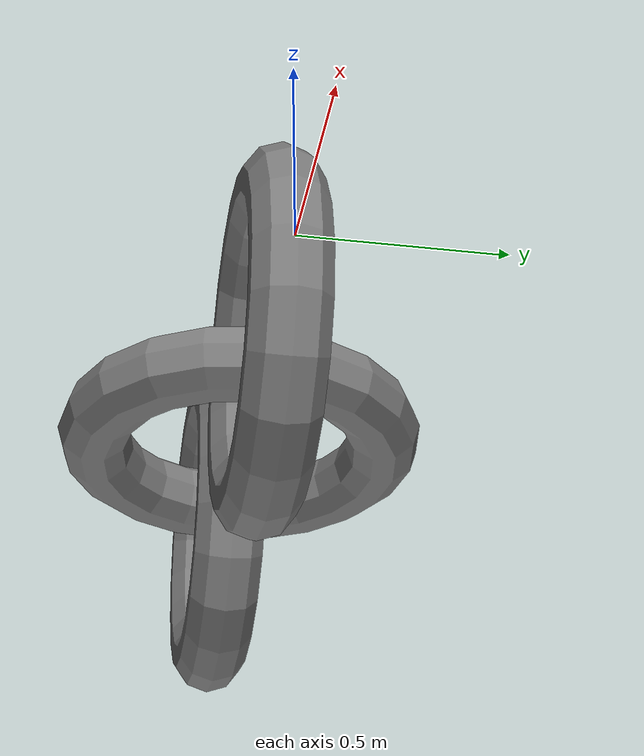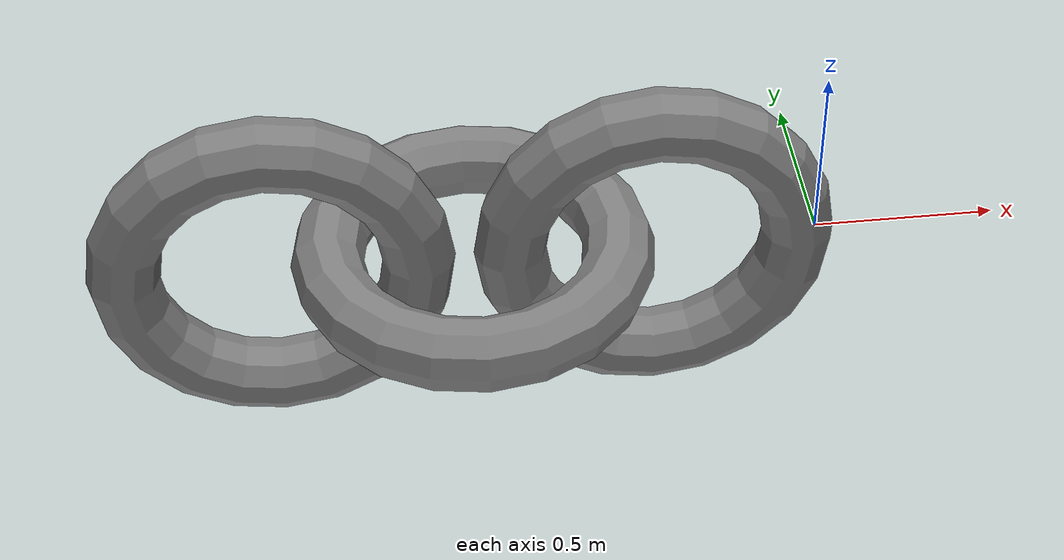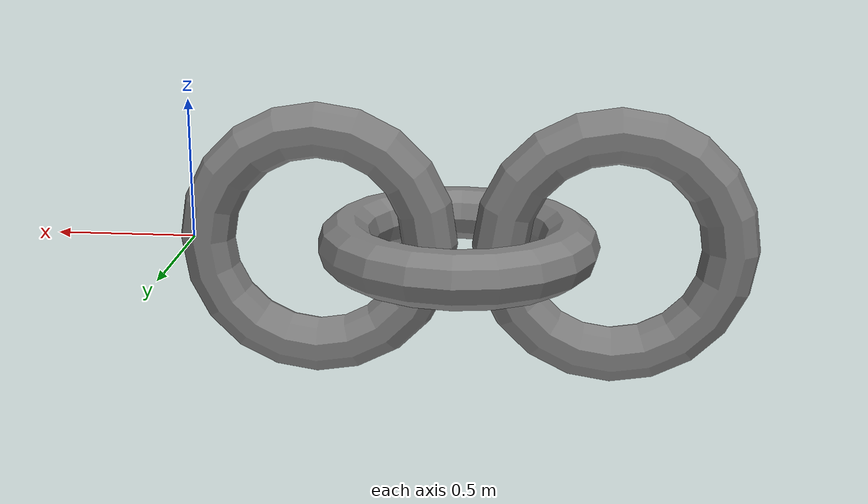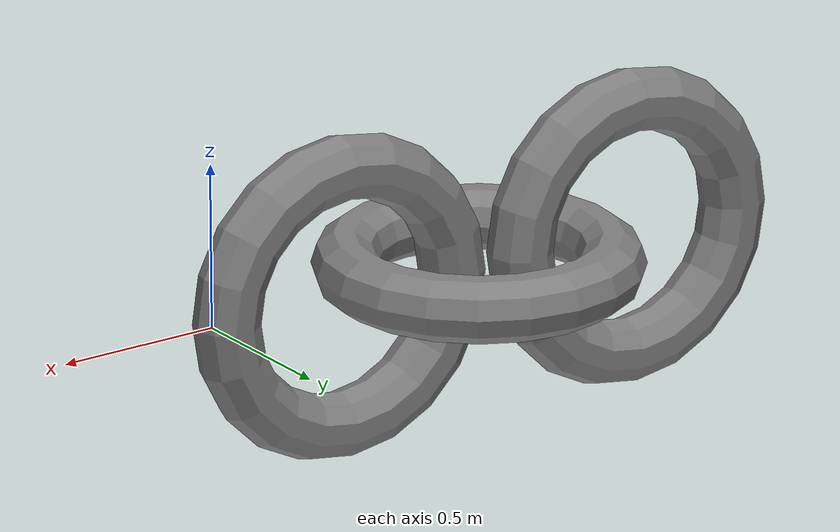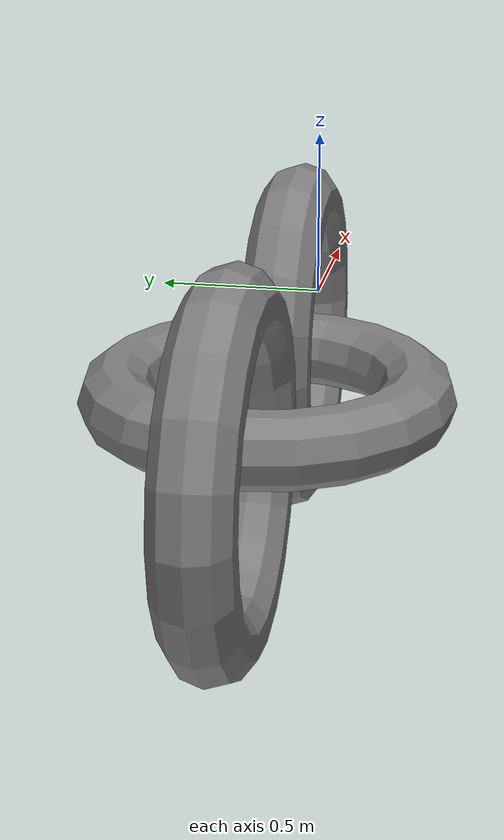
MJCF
<mujoco>
    <asset>
        <mesh file="torus.obj" name="torus"/>
        <mesh file="torus.obj" name="torus"/>
        <mesh file="torus.obj" name="torus"/>
    </asset>
    <worldbody>
        <body pos="-1.5 0 0" quat="0 0 0.707107 0.707107">
            <geom mesh="torus" type="mesh"/>
            <inertial mass="0"/>
        </body>
        <body pos="-0.95 0 0" quat="0 0 1 3.06162e-17">
            <geom mesh="torus" type="mesh"/>
        </body>
        <body pos="-0.45 0 0" quat="0 0 0.707107 0.707107">
            <geom mesh="torus" type="mesh"/>
        </body>
    </worldbody>
</mujoco>
